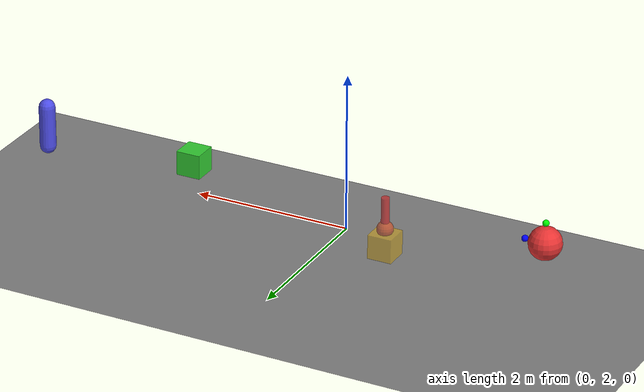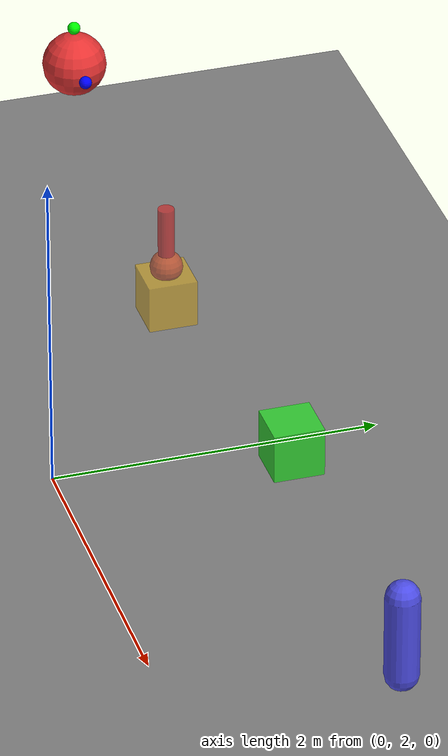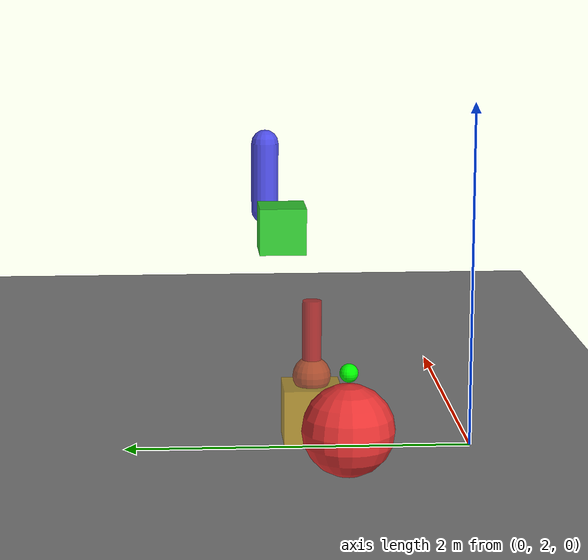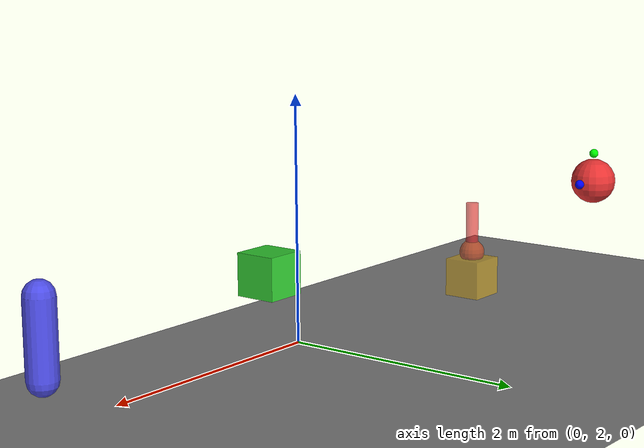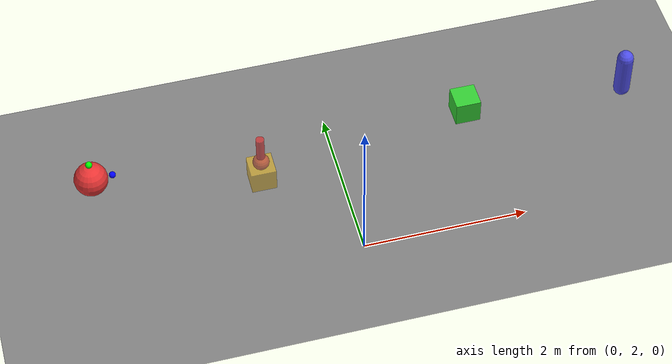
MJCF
<!-- site vs geom 对比演示 -->
<mujoco model="site_demo">
    <compiler angle="radian"/>
    <option timestep="0.002" gravity="0 0 -9.81"/>

    <visual>
        <global realtime="1"/>
        <quality shadowsize="1024"/>
        <headlight diffuse="1 1 1" specular="0.5 0.5 0.5" active="1"/>
    </visual>

    <asset>
        <texture name="grid" type="2d" builtin="checker" width="512" height="512"
                 rgb1=".2 .2 .2" rgb2=".8 .8 .8"/>
        <material name="grid" texture="grid"/>
    </asset>

    <worldbody>
        <geom name="floor" type="plane" size="20 20 .01" material="grid" condim="3"/>

        <!-- site vs geom 对比:
             site = 轻量版geom，无质量不碰撞，仅用于标记/传感器安装
             geom = 有质量有碰撞的物理体 -->

        <!-- 场景1: 带有site标记的球体（site随body运动，但不影响物理） -->
        <body pos="-3 3 1">
            <freejoint/>
            <geom type="sphere" size="0.2" rgba=".9 .2 .2 1"/>
            <!-- site标记球体的"顶部"和"前部" -->
            <site type="sphere" size="0.04" rgba="0 1 0 1" pos="0 0 0.25"/>
            <site type="sphere" size="0.04" rgba="0 0 1 1" pos="0.25 0 0"/>
        </body>

        <!-- 场景2: 纯site排布（无geom，仅可视化） -->
        <body pos="-1 3 0.5">
            <site type="box" size="0.15 0.15 0.15" rgba=".9 .7 .1 .6"/>
            <site type="sphere" size="0.1" rgba=".9 .3 .1 .6" pos="0 0 0.2"/>
            <site type="cylinder" size="0.05 0.2" rgba=".9 .1 .1 .6" pos="0 0 0.4"/>
        </body>

        <!-- 场景3: 同样形状的geom vs site并排对比 -->
        <!-- geom: 会掉落到地面 -->
        <body pos="1.5 3 1">
            <freejoint/>
            <geom type="box" size="0.15 0.15 0.15" rgba=".2 .8 .2 1" mass="0.1"/>
        </body>

        <!-- geom+site混合: site用于标记碰撞体的关键点 -->
        <body pos="3.5 3 1">
            <freejoint/>
            <geom type="capsule" size="0.1 0.25" rgba=".3 .3 .9 1"/>
            <!-- 标记两端 -->
            <site type="sphere" size="0.04" rgba="1 .8 0 1" pos="0 0 0.25"/>
            <site type="sphere" size="0.04" rgba="1 .8 0 1" pos="0 0 -0.25"/>
            <!-- 标记中心 -->
            <site type="sphere" size="0.03" rgba="1 0 0 1" pos="0 0 0"/>
        </body>
    </worldbody>
</mujoco>
